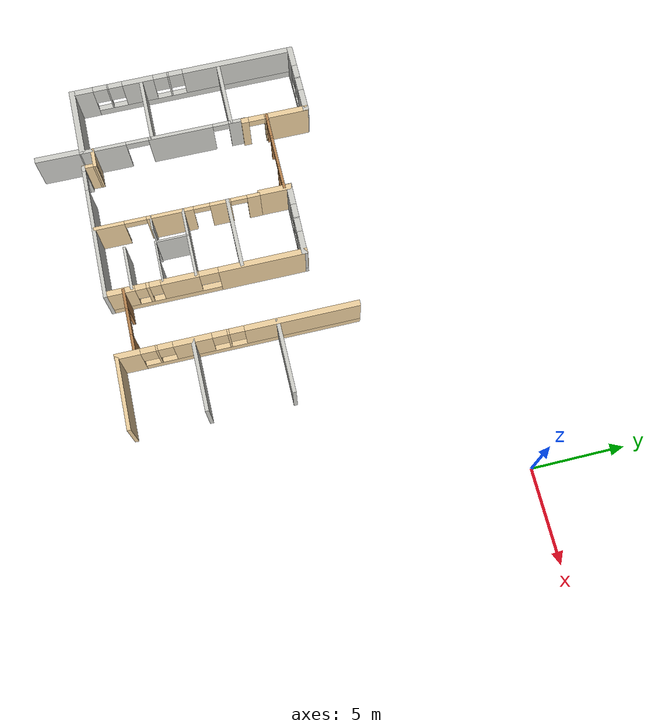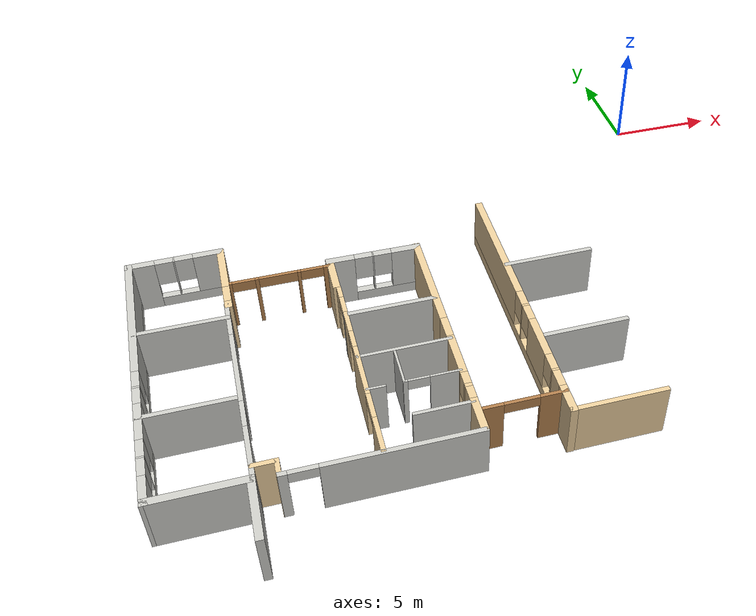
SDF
<sdf version="1.6">
 <model name="floor_with_ground">
  <pose>1.8499 0.23643 0 0 -0 0</pose>
  <link name="Wall_181">
   <collision name="Wall_181_Collision">
    <geometry><box><size>4.08338 0.32 2.5</size></box></geometry>
    <pose>0 0 1.25 0 -0 0</pose>
   </collision>
   <visual name="Wall_181_Visual">
    <pose>0 0 1.25 0 -0 0</pose>
    <geometry><box><size>4.08338 0.32 2.5</size></box></geometry>
    <material>
     <script><uri>file://media/materials/scripts/gazebo.material</uri><name>Gazebo/CeilingTiled</name></script>
     <ambient>0.921569 0.807843 0.615686 1</ambient>
    </material>
   </visual>
   <pose>-25.9952 -19.72 0 0 0 -3.1407</pose>
  </link>
  <link name="Wall_186">
   <pose>-27.9006 -13.4108 0 0 -0 1.57455</pose>
   <visual name="Wall_186_Visual_0">
    <pose>-5.80241 0 1.25 0 -0 0</pose>
    <geometry><box><size>1.33703 0.32 2.5</size></box></geometry>
    <material>
     <script><uri>file://media/materials/scripts/gazebo.material</uri><name>Gazebo/CeilingTiled</name></script>
     <ambient>0.921569 0.807843 0.615686 1</ambient>
    </material>
   </visual>
   <collision name="Wall_186_Collision_0">
    <geometry><box><size>1.33703 0.32 2.5</size></box></geometry>
    <pose>-5.80241 0 1.25 0 -0 0</pose>
   </collision>
   <visual name="Wall_186_Visual_1">
    <pose>0.668515 0 0.25 0 -0 0</pose>
    <geometry><box><size>11.6048 0.32 0.5</size></box></geometry>
    <material>
     <script><uri>file://media/materials/scripts/gazebo.material</uri><name>Gazebo/CeilingTiled</name></script>
     <ambient>0.921569 0.807843 0.615686 1</ambient>
    </material>
   </visual>
   <collision name="Wall_186_Collision_1">
    <geometry><box><size>11.6048 0.32 0.5</size></box></geometry>
    <pose>0.668515 0 0.25 0 -0 0</pose>
   </collision>
   <visual name="Wall_186_Visual_2">
    <pose>-4.29664 0 1.5 0 -0 0</pose>
    <geometry><box><size>0.074497 0.32 2</size></box></geometry>
    <material>
     <script><uri>file://media/materials/scripts/gazebo.material</uri><name>Gazebo/CeilingTiled</name></script>
     <ambient>0.921569 0.807843 0.615686 1</ambient>
    </material>
   </visual>
   <collision name="Wall_186_Collision_2">
    <geometry><box><size>0.074497 0.32 2</size></box></geometry>
    <pose>-4.29664 0 1.5 0 -0 0</pose>
   </collision>
   <visual name="Wall_186_Visual_3">
    <pose>-2.56537 0 1.5 0 -0 0</pose>
    <geometry><box><size>1.78805 0.32 2</size></box></geometry>
    <material>
     <script><uri>file://media/materials/scripts/gazebo.material</uri><name>Gazebo/CeilingTiled</name></script>
     <ambient>0.921569 0.807843 0.615686 1</ambient>
    </material>
   </visual>
   <collision name="Wall_186_Collision_3">
    <geometry><box><size>1.78805 0.32 2</size></box></geometry>
    <pose>-2.56537 0 1.5 0 -0 0</pose>
   </collision>
   <visual name="Wall_186_Visual_4">
    <pose>-0.82558 0 1.5 0 -0 0</pose>
    <geometry><box><size>0.091528 0.32 2</size></box></geometry>
    <material>
     <script><uri>file://media/materials/scripts/gazebo.material</uri><name>Gazebo/CeilingTiled</name></script>
     <ambient>0.921569 0.807843 0.615686 1</ambient>
    </material>
   </visual>
   <collision name="Wall_186_Collision_4">
    <geometry><box><size>0.091528 0.32 2</size></box></geometry>
    <pose>-0.82558 0 1.5 0 -0 0</pose>
   </collision>
   <visual name="Wall_186_Visual_5">
    <pose>3.24555 0 1.5 0 -0 0</pose>
    <geometry><box><size>6.45074 0.32 2</size></box></geometry>
    <material>
     <script><uri>file://media/materials/scripts/gazebo.material</uri><name>Gazebo/CeilingTiled</name></script>
     <ambient>0.921569 0.807843 0.615686 1</ambient>
    </material>
   </visual>
   <collision name="Wall_186_Collision_5">
    <geometry><box><size>6.45074 0.32 2</size></box></geometry>
    <pose>3.24555 0 1.5 0 -0 0</pose>
   </collision>
   <visual name="Wall_186_Visual_6">
    <pose>-4.73389 0 1.9 0 -0 0</pose>
    <geometry><box><size>0.8 0.32 1.2</size></box></geometry>
    <material>
     <script><uri>file://media/materials/scripts/gazebo.material</uri><name>Gazebo/CeilingTiled</name></script>
     <ambient>0.921569 0.807843 0.615686 1</ambient>
    </material>
   </visual>
   <collision name="Wall_186_Collision_6">
    <geometry><box><size>0.8 0.32 1.2</size></box></geometry>
    <pose>-4.73389 0 1.9 0 -0 0</pose>
   </collision>
   <visual name="Wall_186_Visual_7">
    <pose>-3.8594 0 1.9 0 -0 0</pose>
    <geometry><box><size>0.8 0.32 1.2</size></box></geometry>
    <material>
     <script><uri>file://media/materials/scripts/gazebo.material</uri><name>Gazebo/CeilingTiled</name></script>
     <ambient>0.921569 0.807843 0.615686 1</ambient>
    </material>
   </visual>
   <collision name="Wall_186_Collision_7">
    <geometry><box><size>0.8 0.32 1.2</size></box></geometry>
    <pose>-3.8594 0 1.9 0 -0 0</pose>
   </collision>
   <visual name="Wall_186_Visual_8">
    <pose>-1.27134 0 1.9 0 -0 0</pose>
    <geometry><box><size>0.8 0.32 1.2</size></box></geometry>
    <material>
     <script><uri>file://media/materials/scripts/gazebo.material</uri><name>Gazebo/CeilingTiled</name></script>
     <ambient>0.921569 0.807843 0.615686 1</ambient>
    </material>
   </visual>
   <collision name="Wall_186_Collision_8">
    <geometry><box><size>0.8 0.32 1.2</size></box></geometry>
    <pose>-1.27134 0 1.9 0 -0 0</pose>
   </collision>
   <visual name="Wall_186_Visual_9">
    <pose>-0.379816 0 1.9 0 -0 0</pose>
    <geometry><box><size>0.8 0.32 1.2</size></box></geometry>
    <material>
     <script><uri>file://media/materials/scripts/gazebo.material</uri><name>Gazebo/CeilingTiled</name></script>
     <ambient>0.921569 0.807843 0.615686 1</ambient>
    </material>
   </visual>
   <collision name="Wall_186_Collision_9">
    <geometry><box><size>0.8 0.32 1.2</size></box></geometry>
    <pose>-0.379816 0 1.9 0 -0 0</pose>
   </collision>
  </link>
  <link name="Wall_187">
   <pose>-25.9431 -7.08982 0 0 -0 0.005076</pose>
   <visual name="Wall_187_Visual_0">
    <pose>-1.50583 0 1.25 0 -0 0</pose>
    <geometry><box><size>1.27092 0.32 2.5</size></box></geometry>
    <material>
     <script><uri>file://media/materials/scripts/gazebo.material</uri><name>Gazebo/CeilingTiled</name></script>
     <ambient>0.921569 0.807843 0.615686 1</ambient>
    </material>
   </visual>
   <collision name="Wall_187_Collision_0">
    <geometry><box><size>1.27092 0.32 2.5</size></box></geometry>
    <pose>-1.50583 0 1.25 0 -0 0</pose>
   </collision>
   <visual name="Wall_187_Visual_1">
    <pose>0.63546 0 0.25 0 -0 0</pose>
    <geometry><box><size>3.01166 0.32 0.5</size></box></geometry>
    <material>
     <script><uri>file://media/materials/scripts/gazebo.material</uri><name>Gazebo/CeilingTiled</name></script>
     <ambient>0.921569 0.807843 0.615686 1</ambient>
    </material>
   </visual>
   <collision name="Wall_187_Collision_1">
    <geometry><box><size>3.01166 0.32 0.5</size></box></geometry>
    <pose>0.63546 0 0.25 0 -0 0</pose>
   </collision>
   <visual name="Wall_187_Visual_2">
    <pose>-0.042208 0 1.5 0 -0 0</pose>
    <geometry><box><size>0.056323 0.32 2</size></box></geometry>
    <material>
     <script><uri>file://media/materials/scripts/gazebo.material</uri><name>Gazebo/CeilingTiled</name></script>
     <ambient>0.921569 0.807843 0.615686 1</ambient>
    </material>
   </visual>
   <collision name="Wall_187_Collision_2">
    <geometry><box><size>0.056323 0.32 2</size></box></geometry>
    <pose>-0.042208 0 1.5 0 -0 0</pose>
   </collision>
   <visual name="Wall_187_Visual_3">
    <pose>1.46362 0 1.5 0 -0 0</pose>
    <geometry><box><size>1.35534 0.32 2</size></box></geometry>
    <material>
     <script><uri>file://media/materials/scripts/gazebo.material</uri><name>Gazebo/CeilingTiled</name></script>
     <ambient>0.921569 0.807843 0.615686 1</ambient>
    </material>
   </visual>
   <collision name="Wall_187_Collision_3">
    <geometry><box><size>1.35534 0.32 2</size></box></geometry>
    <pose>1.46362 0 1.5 0 -0 0</pose>
   </collision>
   <visual name="Wall_187_Visual_4">
    <pose>-0.47037 0 1.9 0 -0 0</pose>
    <geometry><box><size>0.8 0.32 1.2</size></box></geometry>
    <material>
     <script><uri>file://media/materials/scripts/gazebo.material</uri><name>Gazebo/CeilingTiled</name></script>
     <ambient>0.921569 0.807843 0.615686 1</ambient>
    </material>
   </visual>
   <collision name="Wall_187_Collision_4">
    <geometry><box><size>0.8 0.32 1.2</size></box></geometry>
    <pose>-0.47037 0 1.9 0 -0 0</pose>
   </collision>
   <visual name="Wall_187_Visual_5">
    <pose>0.385953 0 1.9 0 -0 0</pose>
    <geometry><box><size>0.8 0.32 1.2</size></box></geometry>
    <material>
     <script><uri>file://media/materials/scripts/gazebo.material</uri><name>Gazebo/CeilingTiled</name></script>
     <ambient>0.921569 0.807843 0.615686 1</ambient>
    </material>
   </visual>
   <collision name="Wall_187_Collision_5">
    <geometry><box><size>0.8 0.32 1.2</size></box></geometry>
    <pose>0.385953 0 1.9 0 -0 0</pose>
   </collision>
  </link>
  <link name="Wall_191">
   <collision name="Wall_191_Collision">
    <geometry><box><size>4.05 0.2 2.5</size></box></geometry>
    <pose>0 0 1.25 0 -0 0</pose>
   </collision>
   <visual name="Wall_191_Visual">
    <pose>0 0 1.25 0 -0 0</pose>
    <geometry><box><size>4.05 0.2 2.5</size></box></geometry>
    <material>
     <script><uri>file://media/materials/scripts/gazebo.material</uri><name>Gazebo/CeilingTiled</name></script>
     <ambient>0.333333 0.666667 1 1</ambient>
    </material>
   </visual>
   <pose>-26 -15.8017 0 0 -0 3.14159</pose>
  </link>
  <link name="Wall_193">
   <collision name="Wall_193_Collision">
    <geometry><box><size>4.02352 0.2 2.5</size></box></geometry>
    <pose>0 0 1.25 0 -0 0</pose>
   </collision>
   <visual name="Wall_193_Visual">
    <pose>0 0 1.25 0 -0 0</pose>
    <geometry><box><size>4.02352 0.2 2.5</size></box></geometry>
    <material>
     <script><uri>file://media/materials/scripts/gazebo.material</uri><name>Gazebo/CeilingTiled</name></script>
     <ambient>0.333333 0.666667 1 1</ambient>
    </material>
   </visual>
   <pose>-25.9541 -11.3391 0 0 -0 3.13913</pose>
  </link>
  <link name="Wall_195">
   <pose>-21.6812 -9.31782 0 0 -0 0</pose>
   <visual name="Wall_195_Visual_0">
    <pose>-2.18081 0 1.25 0 -0 0</pose>
    <geometry><box><size>0.38838 0.15 2.5</size></box></geometry>
    <material>
     <script><uri>file://media/materials/scripts/gazebo.material</uri><name>Gazebo/Wood</name></script>
     <ambient>1 1 1 1</ambient>
    </material>
   </visual>
   <collision name="Wall_195_Collision_0">
    <geometry><box><size>0.38838 0.15 2.5</size></box></geometry>
    <pose>-2.18081 0 1.25 0 -0 0</pose>
   </collision>
   <visual name="Wall_195_Visual_1">
    <pose>-0.905753 0 1.25 0 -0 0</pose>
    <geometry><box><size>0.161734 0.15 2.5</size></box></geometry>
    <material>
     <script><uri>file://media/materials/scripts/gazebo.material</uri><name>Gazebo/Wood</name></script>
     <ambient>1 1 1 1</ambient>
    </material>
   </visual>
   <collision name="Wall_195_Collision_1">
    <geometry><box><size>0.161734 0.15 2.5</size></box></geometry>
    <pose>-0.905753 0 1.25 0 -0 0</pose>
   </collision>
   <visual name="Wall_195_Visual_2">
    <pose>0.917762 0 1.25 0 -0 0</pose>
    <geometry><box><size>0.142485 0.15 2.5</size></box></geometry>
    <material>
     <script><uri>file://media/materials/scripts/gazebo.material</uri><name>Gazebo/Wood</name></script>
     <ambient>1 1 1 1</ambient>
    </material>
   </visual>
   <collision name="Wall_195_Collision_2">
    <geometry><box><size>0.142485 0.15 2.5</size></box></geometry>
    <pose>0.917762 0 1.25 0 -0 0</pose>
   </collision>
   <visual name="Wall_195_Visual_3">
    <pose>2.182 0 1.25 0 -0 0</pose>
    <geometry><box><size>0.385996 0.15 2.5</size></box></geometry>
    <material>
     <script><uri>file://media/materials/scripts/gazebo.material</uri><name>Gazebo/Wood</name></script>
     <ambient>1 1 1 1</ambient>
    </material>
   </visual>
   <collision name="Wall_195_Collision_3">
    <geometry><box><size>0.385996 0.15 2.5</size></box></geometry>
    <pose>2.182 0 1.25 0 -0 0</pose>
   </collision>
   <visual name="Wall_195_Visual_4">
    <pose>-1.48662 0 2.25 0 -0 0</pose>
    <geometry><box><size>1 0.15 0.5</size></box></geometry>
    <material>
     <script><uri>file://media/materials/scripts/gazebo.material</uri><name>Gazebo/Wood</name></script>
     <ambient>1 1 1 1</ambient>
    </material>
   </visual>
   <collision name="Wall_195_Collision_4">
    <geometry><box><size>1 0.15 0.5</size></box></geometry>
    <pose>-1.48662 0 2.25 0 -0 0</pose>
   </collision>
   <visual name="Wall_195_Visual_5">
    <pose>0.010817 0 2.25 0 -0 0</pose>
    <geometry><box><size>1.67141 0.15 0.5</size></box></geometry>
    <material>
     <script><uri>file://media/materials/scripts/gazebo.material</uri><name>Gazebo/Wood</name></script>
     <ambient>1 1 1 1</ambient>
    </material>
   </visual>
   <collision name="Wall_195_Collision_5">
    <geometry><box><size>1.67141 0.15 0.5</size></box></geometry>
    <pose>0.010817 0 2.25 0 -0 0</pose>
   </collision>
   <visual name="Wall_195_Visual_6">
    <pose>1.489 0 2.25 0 -0 0</pose>
    <geometry><box><size>1 0.15 0.5</size></box></geometry>
    <material>
     <script><uri>file://media/materials/scripts/gazebo.material</uri><name>Gazebo/Wood</name></script>
     <ambient>1 1 1 1</ambient>
    </material>
   </visual>
   <collision name="Wall_195_Collision_6">
    <geometry><box><size>1 0.15 0.5</size></box></geometry>
    <pose>1.489 0 2.25 0 -0 0</pose>
   </collision>
  </link>
  <link name="Wall_200">
   <pose>-17.3984 -9.07529 0 0 0 -0.012836</pose>
   <visual name="Wall_200_Visual_0">
    <pose>-1.50049 0 1.25 0 -0 0</pose>
    <geometry><box><size>1.27201 0.32 2.5</size></box></geometry>
    <material>
     <script><uri>file://media/materials/scripts/gazebo.material</uri><name>Gazebo/CeilingTiled</name></script>
     <ambient>0.921569 0.807843 0.615686 1</ambient>
    </material>
   </visual>
   <collision name="Wall_200_Collision_0">
    <geometry><box><size>1.27201 0.32 2.5</size></box></geometry>
    <pose>-1.50049 0 1.25 0 -0 0</pose>
   </collision>
   <visual name="Wall_200_Visual_1">
    <pose>0.636007 0 0.25 0 -0 0</pose>
    <geometry><box><size>3.00097 0.32 0.5</size></box></geometry>
    <material>
     <script><uri>file://media/materials/scripts/gazebo.material</uri><name>Gazebo/CeilingTiled</name></script>
     <ambient>0.921569 0.807843 0.615686 1</ambient>
    </material>
   </visual>
   <collision name="Wall_200_Collision_1">
    <geometry><box><size>3.00097 0.32 0.5</size></box></geometry>
    <pose>0.636007 0 0.25 0 -0 0</pose>
   </collision>
   <visual name="Wall_200_Visual_2">
    <pose>-0.037886 0 1.5 0 -0 0</pose>
    <geometry><box><size>0.053183 0.32 2</size></box></geometry>
    <material>
     <script><uri>file://media/materials/scripts/gazebo.material</uri><name>Gazebo/CeilingTiled</name></script>
     <ambient>0.921569 0.807843 0.615686 1</ambient>
    </material>
   </visual>
   <collision name="Wall_200_Collision_2">
    <geometry><box><size>0.053183 0.32 2</size></box></geometry>
    <pose>-0.037886 0 1.5 0 -0 0</pose>
   </collision>
   <visual name="Wall_200_Visual_3">
    <pose>1.4626 0 1.5 0 -0 0</pose>
    <geometry><box><size>1.34779 0.32 2</size></box></geometry>
    <material>
     <script><uri>file://media/materials/scripts/gazebo.material</uri><name>Gazebo/CeilingTiled</name></script>
     <ambient>0.921569 0.807843 0.615686 1</ambient>
    </material>
   </visual>
   <collision name="Wall_200_Collision_3">
    <geometry><box><size>1.34779 0.32 2</size></box></geometry>
    <pose>1.4626 0 1.5 0 -0 0</pose>
   </collision>
   <visual name="Wall_200_Visual_4">
    <pose>-0.464478 0 1.9 0 -0 0</pose>
    <geometry><box><size>0.8 0.32 1.2</size></box></geometry>
    <material>
     <script><uri>file://media/materials/scripts/gazebo.material</uri><name>Gazebo/CeilingTiled</name></script>
     <ambient>0.921569 0.807843 0.615686 1</ambient>
    </material>
   </visual>
   <collision name="Wall_200_Collision_4">
    <geometry><box><size>0.8 0.32 1.2</size></box></geometry>
    <pose>-0.464478 0 1.9 0 -0 0</pose>
   </collision>
   <visual name="Wall_200_Visual_5">
    <pose>0.388705 0 1.9 0 -0 0</pose>
    <geometry><box><size>0.8 0.32 1.2</size></box></geometry>
    <material>
     <script><uri>file://media/materials/scripts/gazebo.material</uri><name>Gazebo/CeilingTiled</name></script>
     <ambient>0.921569 0.807843 0.615686 1</ambient>
    </material>
   </visual>
   <collision name="Wall_200_Collision_5">
    <geometry><box><size>0.8 0.32 1.2</size></box></geometry>
    <pose>0.388705 0 1.9 0 -0 0</pose>
   </collision>
  </link>
  <link name="Wall_201">
   <pose>-15.4201 -14.3827 0 0 0 -1.57046</pose>
   <visual name="Wall_201_Visual_0">
    <pose>-3.03581 0 1.25 0 -0 0</pose>
    <geometry><box><size>4.85262 0.32 2.5</size></box></geometry>
    <material>
     <script><uri>file://media/materials/scripts/gazebo.material</uri><name>Gazebo/Grey</name></script>
     <ambient>0.921569 0.807843 0.615686 1</ambient>
    </material>
   </visual>
   <collision name="Wall_201_Collision_0">
    <geometry><box><size>4.85262 0.32 2.5</size></box></geometry>
    <pose>-3.03581 0 1.25 0 -0 0</pose>
   </collision>
   <visual name="Wall_201_Visual_1">
    <pose>2.42631 0 0.25 0 -0 0</pose>
    <geometry><box><size>6.07163 0.32 0.5</size></box></geometry>
    <material>
     <script><uri>file://media/materials/scripts/gazebo.material</uri><name>Gazebo/Grey</name></script>
     <ambient>0.921569 0.807843 0.615686 1</ambient>
    </material>
   </visual>
   <collision name="Wall_201_Collision_1">
    <geometry><box><size>6.07163 0.32 0.5</size></box></geometry>
    <pose>2.42631 0 0.25 0 -0 0</pose>
   </collision>
   <visual name="Wall_201_Visual_2">
    <pose>1.46112 0 1.5 0 -0 0</pose>
    <geometry><box><size>2.05458 0.32 2</size></box></geometry>
    <material>
     <script><uri>file://media/materials/scripts/gazebo.material</uri><name>Gazebo/Grey</name></script>
     <ambient>0.921569 0.807843 0.615686 1</ambient>
    </material>
   </visual>
   <collision name="Wall_201_Collision_2">
    <geometry><box><size>2.05458 0.32 2</size></box></geometry>
    <pose>1.46112 0 1.5 0 -0 0</pose>
   </collision>
   <visual name="Wall_201_Visual_3">
    <pose>3.17194 0 1.5 0 -0 0</pose>
    <geometry><box><size>0.16705 0.32 2</size></box></geometry>
    <material>
     <script><uri>file://media/materials/scripts/gazebo.material</uri><name>Gazebo/Grey</name></script>
     <ambient>0.921569 0.807843 0.615686 1</ambient>
    </material>
   </visual>
   <collision name="Wall_201_Collision_3">
    <geometry><box><size>0.16705 0.32 2</size></box></geometry>
    <pose>3.17194 0 1.5 0 -0 0</pose>
   </collision>
   <visual name="Wall_201_Visual_4">
    <pose>4.65879 0 1.5 0 -0 0</pose>
    <geometry><box><size>1.60666 0.32 2</size></box></geometry>
    <material>
     <script><uri>file://media/materials/scripts/gazebo.material</uri><name>Gazebo/Grey</name></script>
     <ambient>0.921569 0.807843 0.615686 1</ambient>
    </material>
   </visual>
   <collision name="Wall_201_Collision_4">
    <geometry><box><size>1.60666 0.32 2</size></box></geometry>
    <pose>4.65879 0 1.5 0 -0 0</pose>
   </collision>
   <visual name="Wall_201_Visual_5">
    <pose>-0.087837 0 1.9 0 -0 0</pose>
    <geometry><box><size>1.04333 0.32 1.2</size></box></geometry>
    <material>
     <script><uri>file://media/materials/scripts/gazebo.material</uri><name>Gazebo/Grey</name></script>
     <ambient>0.921569 0.807843 0.615686 1</ambient>
    </material>
   </visual>
   <collision name="Wall_201_Collision_5">
    <geometry><box><size>1.04333 0.32 1.2</size></box></geometry>
    <pose>-0.087837 0 1.9 0 -0 0</pose>
   </collision>
   <visual name="Wall_201_Visual_6">
    <pose>2.78841 0 1.9 0 -0 0</pose>
    <geometry><box><size>0.6 0.32 1.2</size></box></geometry>
    <material>
     <script><uri>file://media/materials/scripts/gazebo.material</uri><name>Gazebo/Grey</name></script>
     <ambient>0.921569 0.807843 0.615686 1</ambient>
    </material>
   </visual>
   <collision name="Wall_201_Collision_6">
    <geometry><box><size>0.6 0.32 1.2</size></box></geometry>
    <pose>2.78841 0 1.9 0 -0 0</pose>
   </collision>
   <visual name="Wall_201_Visual_7">
    <pose>3.55546 0 1.9 0 -0 0</pose>
    <geometry><box><size>0.6 0.32 1.2</size></box></geometry>
    <material>
     <script><uri>file://media/materials/scripts/gazebo.material</uri><name>Gazebo/Grey</name></script>
     <ambient>0.921569 0.807843 0.615686 1</ambient>
    </material>
   </visual>
   <collision name="Wall_201_Collision_7">
    <geometry><box><size>0.6 0.32 1.2</size></box></geometry>
    <pose>3.55546 0 1.9 0 -0 0</pose>
   </collision>
  </link>
  <link name="Wall_204">
   <collision name="Wall_204_Collision">
    <geometry><box><size>4.05 0.2 2.5</size></box></geometry>
    <pose>0 0 1.25 0 -0 0</pose>
   </collision>
   <visual name="Wall_204_Visual">
    <pose>0 0 1.25 0 -0 0</pose>
    <geometry><box><size>4.05 0.2 2.5</size></box></geometry>
    <material>
     <script><uri>file://media/materials/scripts/gazebo.material</uri><name>Gazebo/CeilingTiled</name></script>
     <ambient>0.333333 0.666667 1 1</ambient>
    </material>
   </visual>
   <pose>-17.3699 -12.4864 0 0 -0 0</pose>
  </link>
  <link name="Wall_206">
   <collision name="Wall_206_Collision">
    <geometry><box><size>4 0.15 2.5</size></box></geometry>
    <pose>0 0 1.25 0 -0 0</pose>
   </collision>
   <visual name="Wall_206_Visual">
    <pose>0 0 1.25 0 -0 0</pose>
    <geometry><box><size>4 0.15 2.5</size></box></geometry>
    <material>
     <script><uri>file://media/materials/scripts/gazebo.material</uri><name>Gazebo/CeilingTiled</name></script>
     <ambient>0.333333 0.666667 1 1</ambient>
    </material>
   </visual>
   <pose>-17.3502 -14.96 0 0 -0 0</pose>
  </link>
  <link name="Wall_210">
   <pose>-16.6427 -16.7265 0 0 -0 3.13909</pose>
   <visual name="Wall_210_Visual_0">
    <pose>-0.546125 0 1.25 0 -0 0</pose>
    <geometry><box><size>1.3094 0.1 2.5</size></box></geometry>
    <material>
     <script><uri>file://media/materials/scripts/gazebo.material</uri><name>Gazebo/CeilingTiled</name></script>
     <ambient>0.333333 0.666667 1 1</ambient>
    </material>
   </visual>
   <collision name="Wall_210_Collision_0">
    <geometry><box><size>1.3094 0.1 2.5</size></box></geometry>
    <pose>-0.546125 0 1.25 0 -0 0</pose>
   </collision>
   <visual name="Wall_210_Visual_1">
    <pose>1.1047 0 1.25 0 -0 0</pose>
    <geometry><box><size>0.19225 0.1 2.5</size></box></geometry>
    <material>
     <script><uri>file://media/materials/scripts/gazebo.material</uri><name>Gazebo/CeilingTiled</name></script>
     <ambient>0.333333 0.666667 1 1</ambient>
    </material>
   </visual>
   <collision name="Wall_210_Collision_1">
    <geometry><box><size>0.19225 0.1 2.5</size></box></geometry>
    <pose>1.1047 0 1.25 0 -0 0</pose>
   </collision>
   <visual name="Wall_210_Visual_2">
    <pose>0.558575 0 2.25 0 -0 0</pose>
    <geometry><box><size>0.9 0.1 0.5</size></box></geometry>
    <material>
     <script><uri>file://media/materials/scripts/gazebo.material</uri><name>Gazebo/CeilingTiled</name></script>
     <ambient>0.333333 0.666667 1 1</ambient>
    </material>
   </visual>
   <collision name="Wall_210_Collision_2">
    <geometry><box><size>0.9 0.1 0.5</size></box></geometry>
    <pose>0.558575 0 2.25 0 -0 0</pose>
   </collision>
  </link>
  <link name="Wall_214">
   <pose>-13.6497 -18.8452 0 0 -0 0</pose>
   <visual name="Wall_214_Visual_0">
    <pose>-1.30394 0 1.25 0 -0 0</pose>
    <geometry><box><size>1.14212 0.15 2.5</size></box></geometry>
    <material>
     <script><uri>file://media/materials/scripts/gazebo.material</uri><name>Gazebo/Wood</name></script>
     <ambient>1 1 1 1</ambient>
    </material>
   </visual>
   <collision name="Wall_214_Collision_0">
    <geometry><box><size>1.14212 0.15 2.5</size></box></geometry>
    <pose>-1.30394 0 1.25 0 -0 0</pose>
   </collision>
   <visual name="Wall_214_Visual_1">
    <pose>1.30281 0 1.25 0 -0 0</pose>
    <geometry><box><size>1.14438 0.15 2.5</size></box></geometry>
    <material>
     <script><uri>file://media/materials/scripts/gazebo.material</uri><name>Gazebo/Wood</name></script>
     <ambient>1 1 1 1</ambient>
    </material>
   </visual>
   <collision name="Wall_214_Collision_1">
    <geometry><box><size>1.14438 0.15 2.5</size></box></geometry>
    <pose>1.30281 0 1.25 0 -0 0</pose>
   </collision>
   <visual name="Wall_214_Visual_2">
    <pose>-0.001134 0 2.25 0 -0 0</pose>
    <geometry><box><size>1.4635 0.15 0.5</size></box></geometry>
    <material>
     <script><uri>file://media/materials/scripts/gazebo.material</uri><name>Gazebo/Wood</name></script>
     <ambient>1 1 1 1</ambient>
    </material>
   </visual>
   <collision name="Wall_214_Collision_2">
    <geometry><box><size>1.4635 0.15 0.5</size></box></geometry>
    <pose>-0.001134 0 2.25 0 -0 0</pose>
   </collision>
  </link>
  <link name="Wall_218">
   <pose>-11.8959 -13.4074 0 0 -0 1.5708</pose>
   <visual name="Wall_218_Visual_0">
    <pose>-5.82483 0 1.25 0 -0 0</pose>
    <geometry><box><size>1.35025 0.32 2.5</size></box></geometry>
    <material>
     <script><uri>file://media/materials/scripts/gazebo.material</uri><name>Gazebo/Grey</name></script>
     <ambient>0.921569 0.807843 0.615686 1</ambient>
    </material>
   </visual>
   <collision name="Wall_218_Collision_0">
    <geometry><box><size>1.35025 0.32 2.5</size></box></geometry>
    <pose>-5.82483 0 1.25 0 -0 0</pose>
   </collision>
   <visual name="Wall_218_Visual_1">
    <pose>0.675125 0 0.25 0 -0 0</pose>
    <geometry><box><size>11.6497 0.32 0.5</size></box></geometry>
    <material>
     <script><uri>file://media/materials/scripts/gazebo.material</uri><name>Gazebo/Grey</name></script>
     <ambient>0.921569 0.807843 0.615686 1</ambient>
    </material>
   </visual>
   <collision name="Wall_218_Collision_1">
    <geometry><box><size>11.6497 0.32 0.5</size></box></geometry>
    <pose>0.675125 0 0.25 0 -0 0</pose>
   </collision>
   <visual name="Wall_218_Visual_2">
    <pose>-4.30006 0 1.5 0 -0 0</pose>
    <geometry><box><size>0.0993 0.32 2</size></box></geometry>
    <material>
     <script><uri>file://media/materials/scripts/gazebo.material</uri><name>Gazebo/Grey</name></script>
     <ambient>0.921569 0.807843 0.615686 1</ambient>
    </material>
   </visual>
   <collision name="Wall_218_Collision_2">
    <geometry><box><size>0.0993 0.32 2</size></box></geometry>
    <pose>-4.30006 0 1.5 0 -0 0</pose>
   </collision>
   <visual name="Wall_218_Visual_3">
    <pose>-2.42302 0 1.5 0 -0 0</pose>
    <geometry><box><size>2.05476 0.32 2</size></box></geometry>
    <material>
     <script><uri>file://media/materials/scripts/gazebo.material</uri><name>Gazebo/Grey</name></script>
     <ambient>0.921569 0.807843 0.615686 1</ambient>
    </material>
   </visual>
   <collision name="Wall_218_Collision_3">
    <geometry><box><size>2.05476 0.32 2</size></box></geometry>
    <pose>-2.42302 0 1.5 0 -0 0</pose>
   </collision>
   <visual name="Wall_218_Visual_4">
    <pose>-0.543086 0 1.5 0 -0 0</pose>
    <geometry><box><size>0.10511 0.32 2</size></box></geometry>
    <material>
     <script><uri>file://media/materials/scripts/gazebo.material</uri><name>Gazebo/Grey</name></script>
     <ambient>0.921569 0.807843 0.615686 1</ambient>
    </material>
   </visual>
   <collision name="Wall_218_Collision_4">
    <geometry><box><size>0.10511 0.32 2</size></box></geometry>
    <pose>-0.543086 0 1.5 0 -0 0</pose>
   </collision>
   <visual name="Wall_218_Visual_5">
    <pose>3.40471 0 1.5 0 -0 0</pose>
    <geometry><box><size>6.19048 0.32 2</size></box></geometry>
    <material>
     <script><uri>file://media/materials/scripts/gazebo.material</uri><name>Gazebo/Grey</name></script>
     <ambient>0.921569 0.807843 0.615686 1</ambient>
    </material>
   </visual>
   <collision name="Wall_218_Collision_5">
    <geometry><box><size>6.19048 0.32 2</size></box></geometry>
    <pose>3.40471 0 1.5 0 -0 0</pose>
   </collision>
   <visual name="Wall_218_Visual_6">
    <pose>-4.7497 0 1.9 0 -0 0</pose>
    <geometry><box><size>0.8 0.32 1.2</size></box></geometry>
    <material>
     <script><uri>file://media/materials/scripts/gazebo.material</uri><name>Gazebo/Grey</name></script>
     <ambient>0.921569 0.807843 0.615686 1</ambient>
    </material>
   </visual>
   <collision name="Wall_218_Collision_6">
    <geometry><box><size>0.8 0.32 1.2</size></box></geometry>
    <pose>-4.7497 0 1.9 0 -0 0</pose>
   </collision>
   <visual name="Wall_218_Visual_7">
    <pose>-3.8504 0 1.9 0 -0 0</pose>
    <geometry><box><size>0.8 0.32 1.2</size></box></geometry>
    <material>
     <script><uri>file://media/materials/scripts/gazebo.material</uri><name>Gazebo/Grey</name></script>
     <ambient>0.921569 0.807843 0.615686 1</ambient>
    </material>
   </visual>
   <collision name="Wall_218_Collision_7">
    <geometry><box><size>0.8 0.32 1.2</size></box></geometry>
    <pose>-3.8504 0 1.9 0 -0 0</pose>
   </collision>
   <visual name="Wall_218_Visual_8">
    <pose>-0.995641 0 1.9 0 -0 0</pose>
    <geometry><box><size>0.8 0.32 1.2</size></box></geometry>
    <material>
     <script><uri>file://media/materials/scripts/gazebo.material</uri><name>Gazebo/Grey</name></script>
     <ambient>0.921569 0.807843 0.615686 1</ambient>
    </material>
   </visual>
   <collision name="Wall_218_Collision_8">
    <geometry><box><size>0.8 0.32 1.2</size></box></geometry>
    <pose>-0.995641 0 1.9 0 -0 0</pose>
   </collision>
   <visual name="Wall_218_Visual_9">
    <pose>-0.09053 0 1.9 0 -0 0</pose>
    <geometry><box><size>0.8 0.32 1.2</size></box></geometry>
    <material>
     <script><uri>file://media/materials/scripts/gazebo.material</uri><name>Gazebo/Grey</name></script>
     <ambient>0.921569 0.807843 0.615686 1</ambient>
    </material>
   </visual>
   <collision name="Wall_218_Collision_9">
    <geometry><box><size>0.8 0.32 1.2</size></box></geometry>
    <pose>-0.09053 0 1.9 0 -0 0</pose>
   </collision>
  </link>
  <link name="Wall_225">
   <collision name="Wall_225_Collision">
    <geometry><box><size>4.08875 0.2 2.5</size></box></geometry>
    <pose>0 0 1.25 0 -0 0</pose>
   </collision>
   <visual name="Wall_225_Visual">
    <pose>0 0 1.25 0 -0 0</pose>
    <geometry><box><size>4.08875 0.2 2.5</size></box></geometry>
    <material>
     <script><uri>file://media/materials/scripts/gazebo.material</uri><name>Gazebo/Grey</name></script>
     <ambient>0.921569 0.807843 0.615686 1</ambient>
    </material>
   </visual>
   <pose>-9.99176 -19.7918 0 0 -0 3.1398</pose>
  </link>
  <link name="Wall_228">
   <collision name="Wall_228_Collision">
    <geometry><box><size>3.95755 0.2 2.5</size></box></geometry>
    <pose>0 0 1.25 0 -0 0</pose>
   </collision>
   <visual name="Wall_228_Visual">
    <pose>0 0 1.25 0 -0 0</pose>
    <geometry><box><size>3.95755 0.2 2.5</size></box></geometry>
    <material>
     <script><uri>file://media/materials/scripts/gazebo.material</uri><name>Gazebo/CeilingTiled</name></script>
     <ambient>0.333333 0.666667 1 1</ambient>
    </material>
   </visual>
   <pose>-9.99013 -15.8103 0 0 0 -3.13891</pose>
  </link>
  <link name="Wall_230">
   <collision name="Wall_230_Collision">
    <geometry><box><size>4.05 0.2 2.5</size></box></geometry>
    <pose>0 0 1.25 0 -0 0</pose>
   </collision>
   <visual name="Wall_230_Visual">
    <pose>0 0 1.25 0 -0 0</pose>
    <geometry><box><size>4.05 0.2 2.5</size></box></geometry>
    <material>
     <script><uri>file://media/materials/scripts/gazebo.material</uri><name>Gazebo/CeilingTiled</name></script>
     <ambient>0.333333 0.666667 1 1</ambient>
    </material>
   </visual>
   <pose>-9.9709 -11.3193 0 0 -0 3.14159</pose>
  </link>
  <link name="Wall_285">
   <collision name="Wall_285_Collision">
    <geometry><box><size>1.8315 0.1 2.5</size></box></geometry>
    <pose>0 0 1.25 0 -0 0</pose>
   </collision>
   <visual name="Wall_285_Visual">
    <pose>0 0 1.25 0 -0 0</pose>
    <geometry><box><size>1.8315 0.1 2.5</size></box></geometry>
    <material>
     <script><uri>file://media/materials/scripts/gazebo.material</uri><name>Gazebo/CeilingTiled</name></script>
     <ambient>0.333333 0.666667 1 1</ambient>
    </material>
   </visual>
   <pose>-17.7919 -15.8204 0 0 0 -1.5708</pose>
  </link>
  <link name="Wall_292">
   <collision name="Wall_292_Collision">
    <geometry><box><size>2.5 0.15 2.5</size></box></geometry>
    <pose>0 0 1.25 0 -0 0</pose>
   </collision>
   <visual name="Wall_292_Visual">
    <pose>0 0 1.25 0 -0 0</pose>
    <geometry><box><size>2.5 0.15 2.5</size></box></geometry>
    <material>
     <script><uri>file://media/materials/scripts/gazebo.material</uri><name>Gazebo/CeilingTiled</name></script>
     <ambient>0.333333 0.666667 1 1</ambient>
    </material>
   </visual>
   <pose>-16.6239 -18.3984 0 0 -0 3.14159</pose>
  </link>
  <link name="Wall_318">
   <collision name="Wall_318_Collision">
    <geometry><box><size>1.8926 0.32 2.5</size></box></geometry>
    <pose>0 0 1.25 0 -0 0</pose>
   </collision>
   <visual name="Wall_318_Visual">
    <pose>0 0 1.25 0 -0 0</pose>
    <geometry><box><size>1.8926 0.32 2.5</size></box></geometry>
    <material>
     <script><uri>file://media/materials/scripts/gazebo.material</uri><name>Gazebo/Grey</name></script>
     <ambient>0.921569 0.807843 0.615686 1</ambient>
    </material>
   </visual>
   <pose>-19.3529 -9.83573 0 0 0 -1.57205</pose>
  </link>
  <link name="Wall_320">
   <pose>-19.2819 -15.2658 0 0 0 -1.5708</pose>
   <visual name="Wall_320_Visual_0">
    <pose>-4.20457 0 1.25 0 -0 0</pose>
    <geometry><box><size>0.718856 0.2 2.5</size></box></geometry>
    <material>
     <script><uri>file://media/materials/scripts/gazebo.material</uri><name>Gazebo/Grey</name></script>
     <ambient>0.921569 0.807843 0.615686 1</ambient>
    </material>
   </visual>
   <collision name="Wall_320_Collision_0">
    <geometry><box><size>0.718856 0.2 2.5</size></box></geometry>
    <pose>-4.20457 0 1.25 0 -0 0</pose>
   </collision>
   <visual name="Wall_320_Visual_1">
    <pose>-2.36583 0 1.25 0 -0 0</pose>
    <geometry><box><size>1.15862 0.2 2.5</size></box></geometry>
    <material>
     <script><uri>file://media/materials/scripts/gazebo.material</uri><name>Gazebo/Grey</name></script>
     <ambient>0.921569 0.807843 0.615686 1</ambient>
    </material>
   </visual>
   <collision name="Wall_320_Collision_1">
    <geometry><box><size>1.15862 0.2 2.5</size></box></geometry>
    <pose>-2.36583 0 1.25 0 -0 0</pose>
   </collision>
   <visual name="Wall_320_Visual_2">
    <pose>0.400885 0 1.25 0 -0 0</pose>
    <geometry><box><size>2.57481 0.2 2.5</size></box></geometry>
    <material>
     <script><uri>file://media/materials/scripts/gazebo.material</uri><name>Gazebo/Grey</name></script>
     <ambient>0.921569 0.807843 0.615686 1</ambient>
    </material>
   </visual>
   <collision name="Wall_320_Collision_2">
    <geometry><box><size>2.57481 0.2 2.5</size></box></geometry>
    <pose>0.400885 0 1.25 0 -0 0</pose>
   </collision>
   <visual name="Wall_320_Visual_3">
    <pose>3.72709 0 1.25 0 -0 0</pose>
    <geometry><box><size>1.67382 0.2 2.5</size></box></geometry>
    <material>
     <script><uri>file://media/materials/scripts/gazebo.material</uri><name>Gazebo/Grey</name></script>
     <ambient>0.921569 0.807843 0.615686 1</ambient>
    </material>
   </visual>
   <collision name="Wall_320_Collision_3">
    <geometry><box><size>1.67382 0.2 2.5</size></box></geometry>
    <pose>3.72709 0 1.25 0 -0 0</pose>
   </collision>
   <visual name="Wall_320_Visual_4">
    <pose>-3.39514 0 2.25 0 -0 0</pose>
    <geometry><box><size>0.9 0.2 0.5</size></box></geometry>
    <material>
     <script><uri>file://media/materials/scripts/gazebo.material</uri><name>Gazebo/Grey</name></script>
     <ambient>0.921569 0.807843 0.615686 1</ambient>
    </material>
   </visual>
   <collision name="Wall_320_Collision_4">
    <geometry><box><size>0.9 0.2 0.5</size></box></geometry>
    <pose>-3.39514 0 2.25 0 -0 0</pose>
   </collision>
   <visual name="Wall_320_Visual_5">
    <pose>-1.33652 0 2.25 0 -0 0</pose>
    <geometry><box><size>0.9 0.2 0.5</size></box></geometry>
    <material>
     <script><uri>file://media/materials/scripts/gazebo.material</uri><name>Gazebo/Grey</name></script>
     <ambient>0.921569 0.807843 0.615686 1</ambient>
    </material>
   </visual>
   <collision name="Wall_320_Collision_5">
    <geometry><box><size>0.9 0.2 0.5</size></box></geometry>
    <pose>-1.33652 0 2.25 0 -0 0</pose>
   </collision>
   <visual name="Wall_320_Visual_6">
    <pose>2.28923 0 2.25 0 -0 0</pose>
    <geometry><box><size>1.20189 0.2 0.5</size></box></geometry>
    <material>
     <script><uri>file://media/materials/scripts/gazebo.material</uri><name>Gazebo/Grey</name></script>
     <ambient>0.921569 0.807843 0.615686 1</ambient>
    </material>
   </visual>
   <collision name="Wall_320_Collision_6">
    <geometry><box><size>1.20189 0.2 0.5</size></box></geometry>
    <pose>2.28923 0 2.25 0 -0 0</pose>
   </collision>
  </link>
  <link name="Wall_322">
   <pose>-23.9433 -8.86879 0 0 0 -1.57161</pose>
   <visual name="Wall_322_Visual_0">
    <pose>-0.660294 0 1.25 0 -0 0</pose>
    <geometry><box><size>2.49614 0.32 2.5</size></box></geometry>
    <material>
     <script><uri>file://media/materials/scripts/gazebo.material</uri><name>Gazebo/Grey</name></script>
     <ambient>0.921569 0.807843 0.615686 1</ambient>
    </material>
   </visual>
   <collision name="Wall_322_Collision_0">
    <geometry><box><size>2.49614 0.32 2.5</size></box></geometry>
    <pose>-0.660294 0 1.25 0 -0 0</pose>
   </collision>
   <visual name="Wall_322_Visual_1">
    <pose>1.69807 0 1.25 0 -0 0</pose>
    <geometry><box><size>0.420587 0.32 2.5</size></box></geometry>
    <material>
     <script><uri>file://media/materials/scripts/gazebo.material</uri><name>Gazebo/Grey</name></script>
     <ambient>0.921569 0.807843 0.615686 1</ambient>
    </material>
   </visual>
   <collision name="Wall_322_Collision_1">
    <geometry><box><size>0.420587 0.32 2.5</size></box></geometry>
    <pose>1.69807 0 1.25 0 -0 0</pose>
   </collision>
   <visual name="Wall_322_Visual_2">
    <pose>1.03778 0 2.25 0 -0 0</pose>
    <geometry><box><size>0.9 0.32 0.5</size></box></geometry>
    <material>
     <script><uri>file://media/materials/scripts/gazebo.material</uri><name>Gazebo/Grey</name></script>
     <ambient>0.921569 0.807843 0.615686 1</ambient>
    </material>
   </visual>
   <collision name="Wall_322_Collision_2">
    <geometry><box><size>0.9 0.32 0.5</size></box></geometry>
    <pose>1.03778 0 2.25 0 -0 0</pose>
   </collision>
  </link>
  <link name="Wall_324">
   <pose>-24.0351 -15.1675 0 0 0 -1.57266</pose>
   <visual name="Wall_324_Visual_0">
    <pose>-4.166 0 1.25 0 -0 0</pose>
    <geometry><box><size>0.958554 0.2 2.5</size></box></geometry>
    <material>
     <script><uri>file://media/materials/scripts/gazebo.material</uri><name>Gazebo/CeilingTiled</name></script>
     <ambient>0.921569 0.807843 0.615686 1</ambient>
    </material>
   </visual>
   <collision name="Wall_324_Collision_0">
    <geometry><box><size>0.958554 0.2 2.5</size></box></geometry>
    <pose>-4.166 0 1.25 0 -0 0</pose>
   </collision>
   <visual name="Wall_324_Visual_1">
    <pose>-0.967671 0 1.25 0 -0 0</pose>
    <geometry><box><size>3.63811 0.2 2.5</size></box></geometry>
    <material>
     <script><uri>file://media/materials/scripts/gazebo.material</uri><name>Gazebo/CeilingTiled</name></script>
     <ambient>0.921569 0.807843 0.615686 1</ambient>
    </material>
   </visual>
   <collision name="Wall_324_Collision_1">
    <geometry><box><size>3.63811 0.2 2.5</size></box></geometry>
    <pose>-0.967671 0 1.25 0 -0 0</pose>
   </collision>
   <visual name="Wall_324_Visual_2">
    <pose>3.37962 0 1.25 0 -0 0</pose>
    <geometry><box><size>2.53131 0.2 2.5</size></box></geometry>
    <material>
     <script><uri>file://media/materials/scripts/gazebo.material</uri><name>Gazebo/CeilingTiled</name></script>
     <ambient>0.921569 0.807843 0.615686 1</ambient>
    </material>
   </visual>
   <collision name="Wall_324_Collision_2">
    <geometry><box><size>2.53131 0.2 2.5</size></box></geometry>
    <pose>3.37962 0 1.25 0 -0 0</pose>
   </collision>
   <visual name="Wall_324_Visual_3">
    <pose>-3.23673 0 2.25 0 -0 0</pose>
    <geometry><box><size>0.9 0.2 0.5</size></box></geometry>
    <material>
     <script><uri>file://media/materials/scripts/gazebo.material</uri><name>Gazebo/CeilingTiled</name></script>
     <ambient>0.921569 0.807843 0.615686 1</ambient>
    </material>
   </visual>
   <collision name="Wall_324_Collision_3">
    <geometry><box><size>0.9 0.2 0.5</size></box></geometry>
    <pose>-3.23673 0 2.25 0 -0 0</pose>
   </collision>
   <visual name="Wall_324_Visual_4">
    <pose>1.48267 0 2.25 0 -0 0</pose>
    <geometry><box><size>1.26258 0.2 0.5</size></box></geometry>
    <material>
     <script><uri>file://media/materials/scripts/gazebo.material</uri><name>Gazebo/CeilingTiled</name></script>
     <ambient>0.921569 0.807843 0.615686 1</ambient>
    </material>
   </visual>
   <collision name="Wall_324_Collision_4">
    <geometry><box><size>1.26258 0.2 0.5</size></box></geometry>
    <pose>1.48267 0 2.25 0 -0 0</pose>
   </collision>
  </link>
  <link name="Wall_326">
   <collision name="Wall_326_Collision">
    <geometry><box><size>2.67828 0.32 2.5</size></box></geometry>
    <pose>0 0 1.25 0 -0 0</pose>
   </collision>
   <visual name="Wall_326_Visual">
    <pose>0 0 1.25 0 -0 0</pose>
    <geometry><box><size>2.67828 0.32 2.5</size></box></geometry>
    <material>
     <script><uri>file://media/materials/scripts/gazebo.material</uri><name>Gazebo/CeilingTiled</name></script>
     <ambient>0.921569 0.807843 0.615686 1</ambient>
    </material>
   </visual>
   <pose>-24.1207 -21.0023 0 0 0 -1.57684</pose>
  </link>
  <link name="Wall_353">
   <pose>-19.2319 -19.816 0 0 -0 3.13911</pose>
   <visual name="Wall_353_Visual_0">
    <pose>-0.765119 0 1.25 0 -0 0</pose>
    <geometry><box><size>6.41768 0.2 2.5</size></box></geometry>
    <material>
     <script><uri>file://media/materials/scripts/gazebo.material</uri><name>Gazebo/CeilingTiled</name></script>
     <ambient>0.921569 0.807843 0.615686 1</ambient>
    </material>
   </visual>
   <collision name="Wall_353_Collision_0">
    <geometry><box><size>6.41768 0.2 2.5</size></box></geometry>
    <pose>-0.765119 0 1.25 0 -0 0</pose>
   </collision>
   <visual name="Wall_353_Visual_1">
    <pose>3.79012 0 1.25 0 -0 0</pose>
    <geometry><box><size>0.367684 0.2 2.5</size></box></geometry>
    <material>
     <script><uri>file://media/materials/scripts/gazebo.material</uri><name>Gazebo/CeilingTiled</name></script>
     <ambient>0.921569 0.807843 0.615686 1</ambient>
    </material>
   </visual>
   <collision name="Wall_353_Collision_1">
    <geometry><box><size>0.367684 0.2 2.5</size></box></geometry>
    <pose>3.79012 0 1.25 0 -0 0</pose>
   </collision>
   <visual name="Wall_353_Visual_2">
    <pose>3.025 0 2.25 0 -0 0</pose>
    <geometry><box><size>1.16255 0.2 0.5</size></box></geometry>
    <material>
     <script><uri>file://media/materials/scripts/gazebo.material</uri><name>Gazebo/CeilingTiled</name></script>
     <ambient>0.921569 0.807843 0.615686 1</ambient>
    </material>
   </visual>
   <collision name="Wall_353_Collision_2">
    <geometry><box><size>1.16255 0.2 0.5</size></box></geometry>
    <pose>3.025 0 2.25 0 -0 0</pose>
   </collision>
  </link>
  <link name="Wall_355">
   <collision name="Wall_355_Collision">
    <geometry><box><size>0.826087 0.2 2.5</size></box></geometry>
    <pose>0 0 1.25 0 -0 0</pose>
   </collision>
   <visual name="Wall_355_Visual">
    <pose>0 0 1.25 0 -0 0</pose>
    <geometry><box><size>0.826087 0.2 2.5</size></box></geometry>
    <material>
     <script><uri>file://media/materials/scripts/gazebo.material</uri><name>Gazebo/Grey</name></script>
     <ambient>0.921569 0.807843 0.615686 1</ambient>
    </material>
   </visual>
   <pose>-23.1189 -19.4759 0 0 0 -1.58468</pose>
  </link>
  <link name="Wall_357">
   <collision name="Wall_357_Collision">
    <geometry><box><size>1.12132 0.2 2.5</size></box></geometry>
    <pose>0 0 1.25 0 -0 0</pose>
   </collision>
   <visual name="Wall_357_Visual">
    <pose>0 0 1.25 0 -0 0</pose>
    <geometry><box><size>1.12132 0.2 2.5</size></box></geometry>
    <material>
     <script><uri>file://media/materials/scripts/gazebo.material</uri><name>Gazebo/Grey</name></script>
     <ambient>0.921569 0.807843 0.615686 1</ambient>
    </material>
   </visual>
   <pose>-23.5754 -19.163 0 0 -0 0</pose>
  </link>
  <link name="Wall_367">
   <collision name="Wall_367_Collision">
    <geometry><box><size>0.814831 0.1 2.5</size></box></geometry>
    <pose>0 0 1.25 0 -0 0</pose>
   </collision>
   <visual name="Wall_367_Visual">
    <pose>0 0 1.25 0 -0 0</pose>
    <geometry><box><size>0.814831 0.1 2.5</size></box></geometry>
    <material>
     <script><uri>file://media/materials/scripts/gazebo.material</uri><name>Gazebo/CeilingTiled</name></script>
     <ambient>0.333333 0.666667 1 1</ambient>
    </material>
   </visual>
   <pose>-18.9254 -16.7364 0 0 0 -0.008391</pose>
  </link>
  <static>1</static>
 </model>
</sdf>
